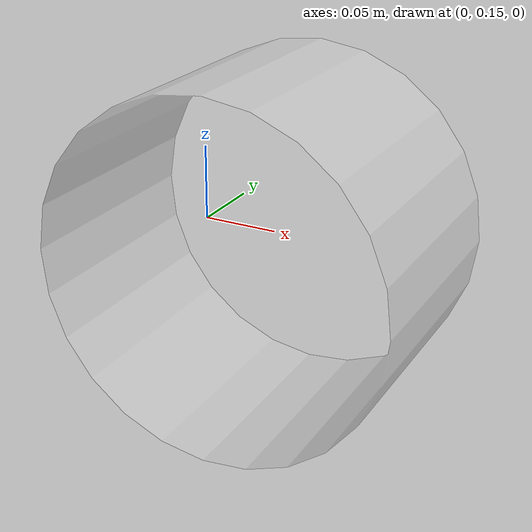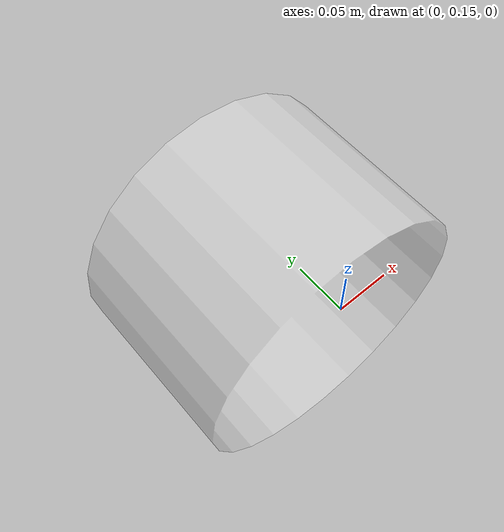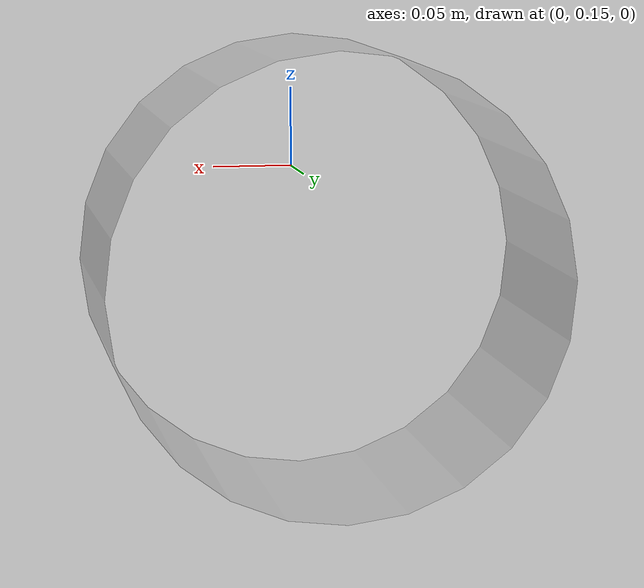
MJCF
<mujoco model="original-9">
  <default>
    <default class="visual">
      <geom group="2" type="mesh" contype="0" conaffinity="0"/>
    </default>
    <default class="collision">
      <geom group="3" type="mesh"/>
    </default>
  </default>
  <asset>
    <material name="material_0_0" specular="0.06666666666666667" shininess="0.03" rgba="0.8627450980392157 0.8627450980392157 0.8627450980392157 0.5019608"/>
    <mesh file="original-9.obj"/>
  </asset>
  <worldbody>
    <body name="original-9">
      <geom material="material_0_0" mesh="original-9" class="visual"/>
      <geom mesh="original-9" class="collision"/>
    </body>
  </worldbody>
</mujoco>
